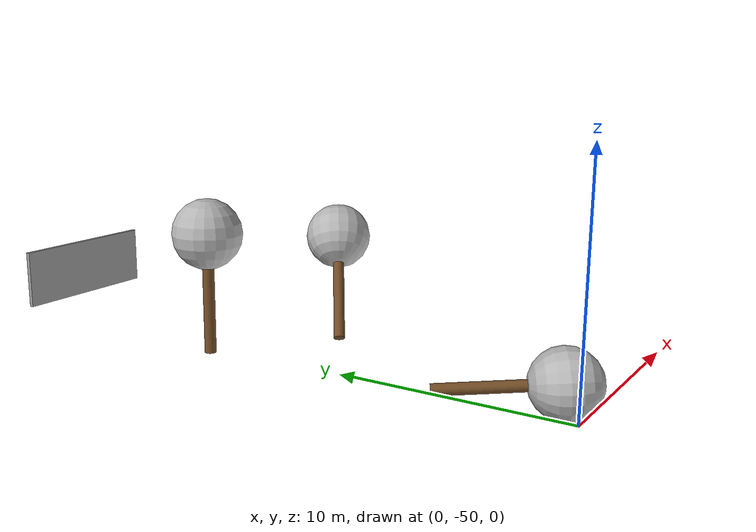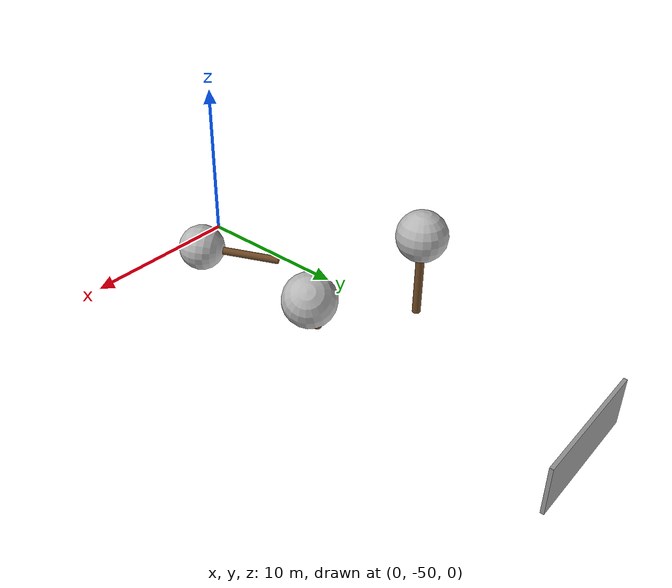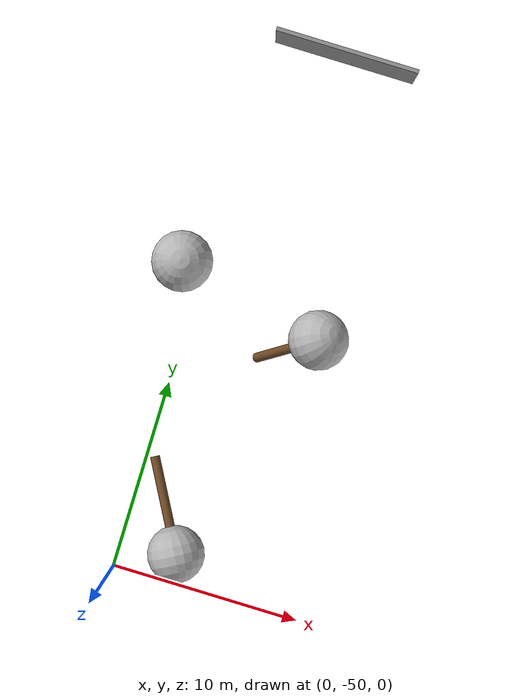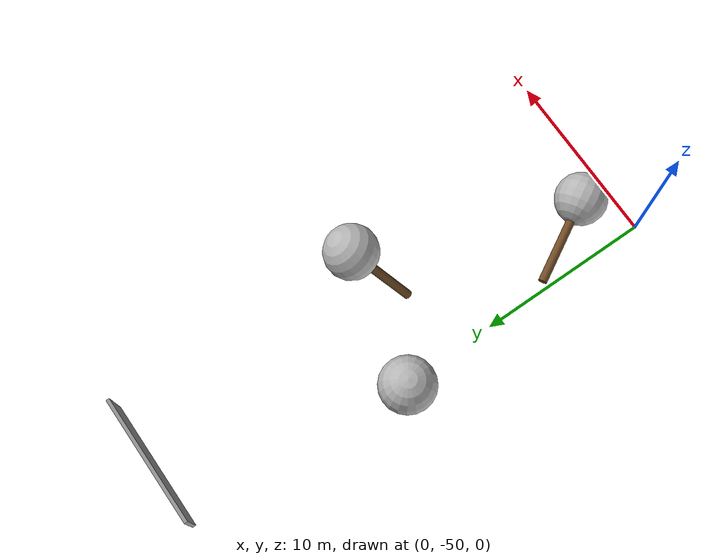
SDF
<sdf version="1.7">
 <world name="default">
  <model name="tree_simple_2">
   <static>1</static>
   <link name="link">
    <pose>0 0 0.1 0 -0 0</pose>
    <inertial>
     <mass>666</mass>
     <inertia>
      <ixx>0.0861167</ixx>
      <ixy>0</ixy>
      <ixz>0</ixz>
      <iyy>0.0861167</iyy>
      <iyz>0</iyz>
      <izz>0.0861167</izz>
     </inertia>
    </inertial>
    <collision name="collision_trunk">
     <pose>0 0 2 0 -0 0</pose>
     <geometry><cylinder><radius>0.25</radius><length>4</length></cylinder></geometry>
     <surface>
      <contact>
       <poissons_ratio>0.347</poissons_ratio>
       <elastic_modulus>8.8e+09</elastic_modulus>
       <ode><kp>100000</kp><kd>100</kd><max_vel>100</max_vel><min_depth>0.001</min_depth></ode>
      </contact>
      <friction>
       <torsional>
        <coefficient>1</coefficient>
        <use_patch_radius>0</use_patch_radius>
        <surface_radius>0.01</surface_radius>
       </torsional>
      </friction>
     </surface>
    </collision>
    <collision name="collision_treetop">
     <pose>0 0 5.2 0 -0 0</pose>
     <geometry><sphere><radius>1.5</radius></sphere></geometry>
     <surface>
      <contact>
       <poissons_ratio>0.347</poissons_ratio>
       <elastic_modulus>8.8e+09</elastic_modulus>
       <ode><kp>100000</kp><kd>100</kd><max_vel>100</max_vel><min_depth>0.001</min_depth></ode>
      </contact>
      <friction>
       <torsional>
        <coefficient>1</coefficient>
        <use_patch_radius>0</use_patch_radius>
        <surface_radius>0.01</surface_radius>
       </torsional>
      </friction>
     </surface>
    </collision>
    <visual name="trunk">
     <pose>0 0 2 0 -0 0</pose>
     <geometry><cylinder><radius>0.25</radius><length>4</length></cylinder></geometry>
     <material>
      <script>
       <uri>model://tree_simple/scripts</uri>
       <uri>model://tree_simple/materials/textures</uri>
       <name>TreeSimple/Trunk</name>
      </script>
     </material>
    </visual>
    <visual name="treetop">
     <pose>0 0 5.2 0 -0 0</pose>
     <geometry><sphere><radius>1.5</radius></sphere></geometry>
     <material>
      <script>
       <uri>model://tree_simple/scripts</uri>
       <uri>model://tree_simple/materials/textures</uri>
       <name>TreeSimple/Treetop</name>
      </script>
     </material>
    </visual>
   </link>
   <pose>3.95679 -37.443 -0 -0.665119 -0 -0.981535</pose>
  </model>
  <model name="tree_simple_3">
   <static>1</static>
   <link name="link">
    <pose>0 0 0.1 0 -0 0</pose>
    <inertial>
     <mass>666</mass>
     <inertia>
      <ixx>0.0861167</ixx>
      <ixy>0</ixy>
      <ixz>0</ixz>
      <iyy>0.0861167</iyy>
      <iyz>0</iyz>
      <izz>0.0861167</izz>
     </inertia>
    </inertial>
    <collision name="collision_trunk">
     <pose>0 0 2 0 -0 0</pose>
     <geometry><cylinder><radius>0.25</radius><length>4</length></cylinder></geometry>
     <surface>
      <contact>
       <poissons_ratio>0.347</poissons_ratio>
       <elastic_modulus>8.8e+09</elastic_modulus>
       <ode><kp>100000</kp><kd>100</kd><max_vel>100</max_vel><min_depth>0.001</min_depth></ode>
      </contact>
      <friction>
       <torsional>
        <coefficient>1</coefficient>
        <use_patch_radius>0</use_patch_radius>
        <surface_radius>0.01</surface_radius>
       </torsional>
      </friction>
     </surface>
    </collision>
    <collision name="collision_treetop">
     <pose>0 0 5.2 0 -0 0</pose>
     <geometry><sphere><radius>1.5</radius></sphere></geometry>
     <surface>
      <contact>
       <poissons_ratio>0.347</poissons_ratio>
       <elastic_modulus>8.8e+09</elastic_modulus>
       <ode><kp>100000</kp><kd>100</kd><max_vel>100</max_vel><min_depth>0.001</min_depth></ode>
      </contact>
      <friction>
       <torsional>
        <coefficient>1</coefficient>
        <use_patch_radius>0</use_patch_radius>
        <surface_radius>0.01</surface_radius>
       </torsional>
      </friction>
     </surface>
    </collision>
    <visual name="trunk">
     <pose>0 0 2 0 -0 0</pose>
     <geometry><cylinder><radius>0.25</radius><length>4</length></cylinder></geometry>
     <material>
      <script>
       <uri>model://tree_simple/scripts</uri>
       <uri>model://tree_simple/materials/textures</uri>
       <name>TreeSimple/Trunk</name>
      </script>
     </material>
    </visual>
    <visual name="treetop">
     <pose>0 0 5.2 0 -0 0</pose>
     <geometry><sphere><radius>1.5</radius></sphere></geometry>
     <material>
      <script>
       <uri>model://tree_simple/scripts</uri>
       <uri>model://tree_simple/materials/textures</uri>
       <name>TreeSimple/Treetop</name>
      </script>
     </material>
    </visual>
   </link>
   <pose>-0.813153 -33.8881 0 0 -0 0</pose>
  </model>
  <model name="tree_simple_4">
   <static>1</static>
   <link name="link">
    <pose>0 0 0.1 0 -0 0</pose>
    <inertial>
     <mass>666</mass>
     <inertia>
      <ixx>0.0861167</ixx>
      <ixy>0</ixy>
      <ixz>0</ixz>
      <iyy>0.0861167</iyy>
      <iyz>0</iyz>
      <izz>0.0861167</izz>
     </inertia>
    </inertial>
    <collision name="collision_trunk">
     <pose>0 0 2 0 -0 0</pose>
     <geometry><cylinder><radius>0.25</radius><length>4</length></cylinder></geometry>
     <surface>
      <contact>
       <poissons_ratio>0.347</poissons_ratio>
       <elastic_modulus>8.8e+09</elastic_modulus>
       <ode><kp>100000</kp><kd>100</kd><max_vel>100</max_vel><min_depth>0.001</min_depth></ode>
      </contact>
      <friction>
       <torsional>
        <coefficient>1</coefficient>
        <use_patch_radius>0</use_patch_radius>
        <surface_radius>0.01</surface_radius>
       </torsional>
      </friction>
     </surface>
    </collision>
    <collision name="collision_treetop">
     <pose>0 0 5.2 0 -0 0</pose>
     <geometry><sphere><radius>1.5</radius></sphere></geometry>
     <surface>
      <contact>
       <poissons_ratio>0.347</poissons_ratio>
       <elastic_modulus>8.8e+09</elastic_modulus>
       <ode><kp>100000</kp><kd>100</kd><max_vel>100</max_vel><min_depth>0.001</min_depth></ode>
      </contact>
      <friction>
       <torsional>
        <coefficient>1</coefficient>
        <use_patch_radius>0</use_patch_radius>
        <surface_radius>0.01</surface_radius>
       </torsional>
      </friction>
     </surface>
    </collision>
    <visual name="trunk">
     <pose>0 0 2 0 -0 0</pose>
     <geometry><cylinder><radius>0.25</radius><length>4</length></cylinder></geometry>
     <material>
      <script>
       <uri>model://tree_simple/scripts</uri>
       <uri>model://tree_simple/materials/textures</uri>
       <name>TreeSimple/Trunk</name>
      </script>
     </material>
    </visual>
    <visual name="treetop">
     <pose>0 0 5.2 0 -0 0</pose>
     <geometry><sphere><radius>1.5</radius></sphere></geometry>
     <material>
      <script>
       <uri>model://tree_simple/scripts</uri>
       <uri>model://tree_simple/materials/textures</uri>
       <name>TreeSimple/Treetop</name>
      </script>
     </material>
    </visual>
   </link>
   <pose>0.362579 -43.8243 0 1.49951 0.040076 0.51133</pose>
  </model>
  <model name="grey_wall_clone_0">
   <static>1</static>
   <link name="link">
    <pose>0 0 1.4 0 -0 0</pose>
    <collision name="collision"><geometry><box><size>7.5 0.2 2.8</size></box></geometry></collision>
    <visual name="visual">
     <cast_shadows>0</cast_shadows>
     <geometry><box><size>7.5 0.2 2.8</size></box></geometry>
     <material>
      <script>
       <uri>model://grey_wall/materials/scripts</uri>
       <uri>model://grey_wall/materials/textures</uri>
       <name>vrc/grey_wall</name>
      </script>
     </material>
    </visual>
   </link>
   <pose>3.88538 -21.2021 0 0 -0 0</pose>
  </model>
 </world>
</sdf>
